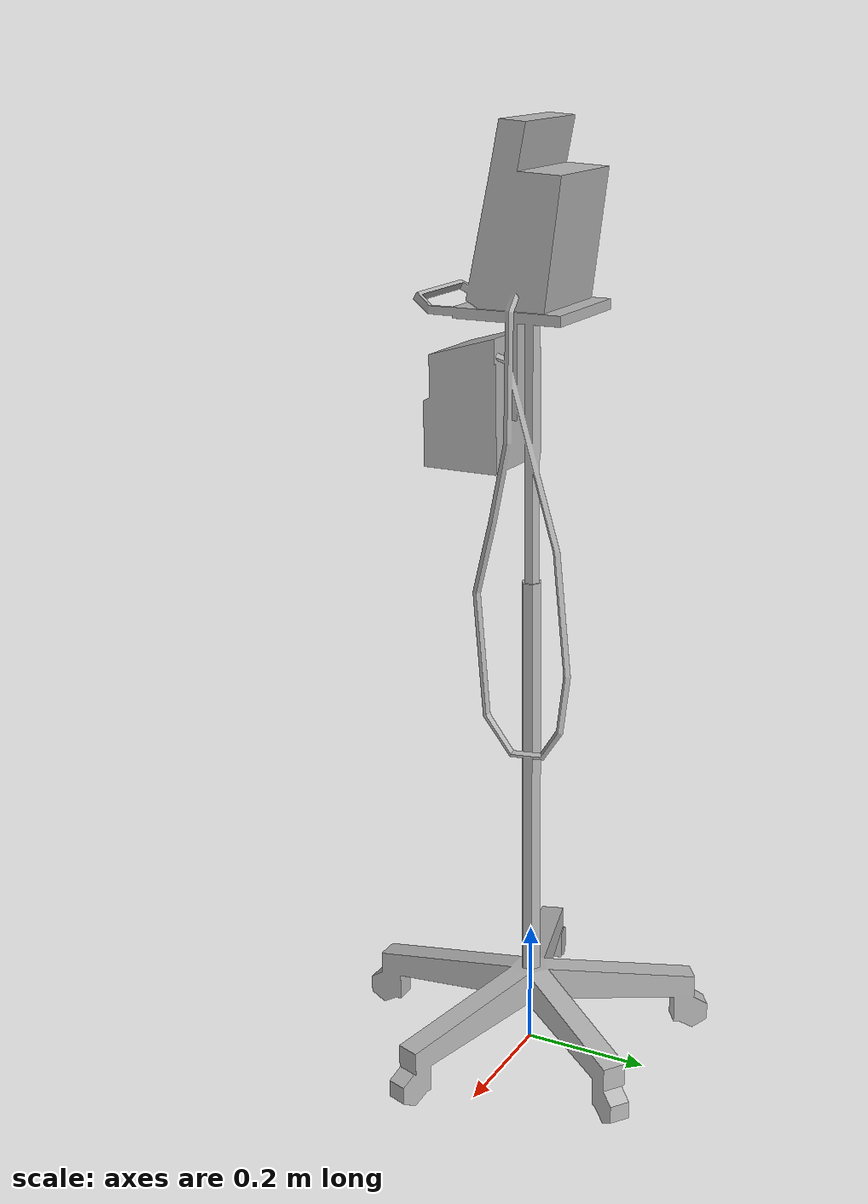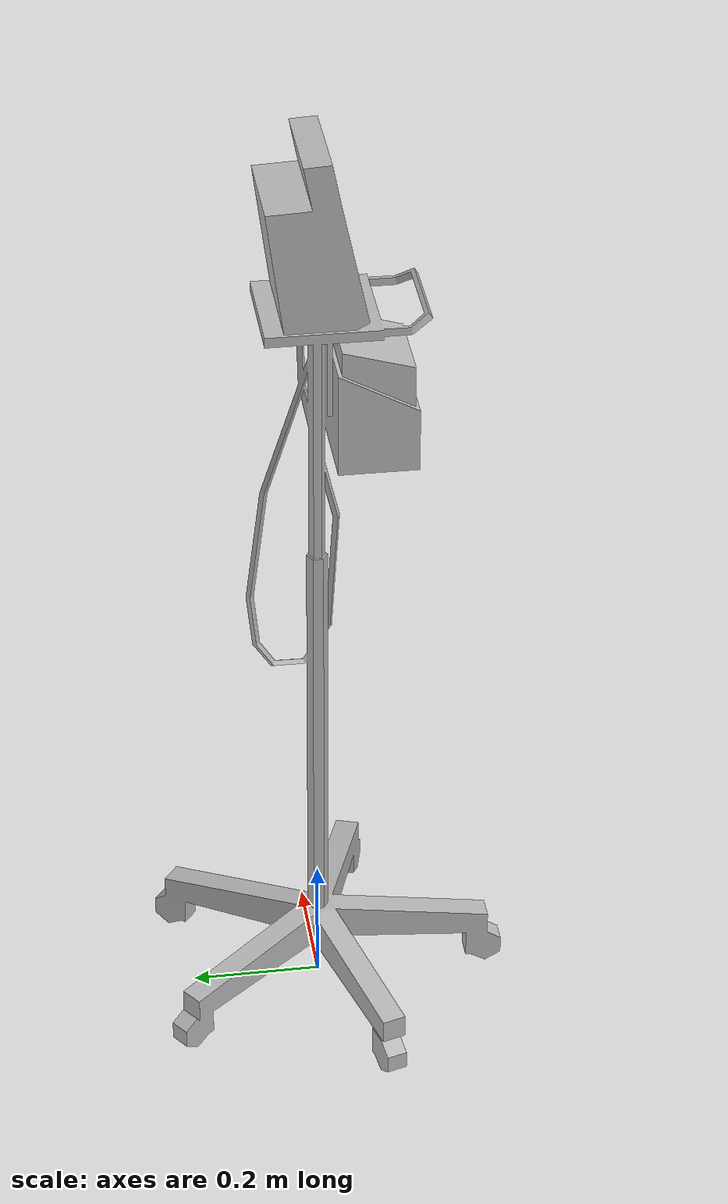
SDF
<?xml version='1.0' encoding='utf-8'?>
<sdf version="1.6">
  <model name="BloodPressureMonitor">
   <static>true</static>
    <link name="body">
      <pose>0 0 0 0 0 0</pose>

      <visual name="visual">
        <geometry>
          <mesh>
            <uri>model://BloodPressureMonitor/meshes/BloodPressureMonitor.obj</uri>
          </mesh>
        </geometry>
      </visual>

      <collision name="collision">
        <geometry>
          <mesh>
            <uri>model://BloodPressureMonitor/meshes/BloodPressureMonitor_Col.obj</uri>
          </mesh>
        </geometry>
      </collision>

    </link>
  </model>
</sdf>
